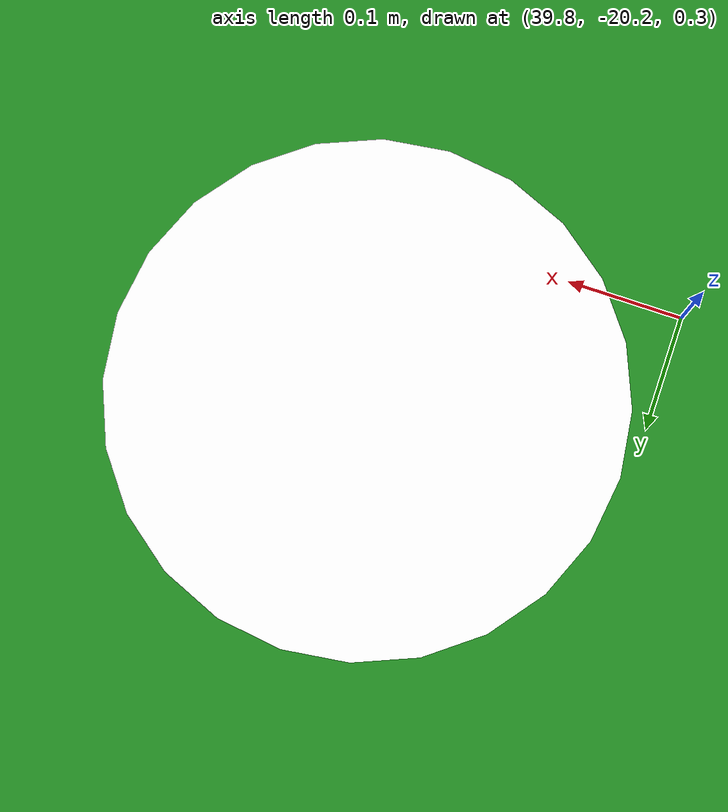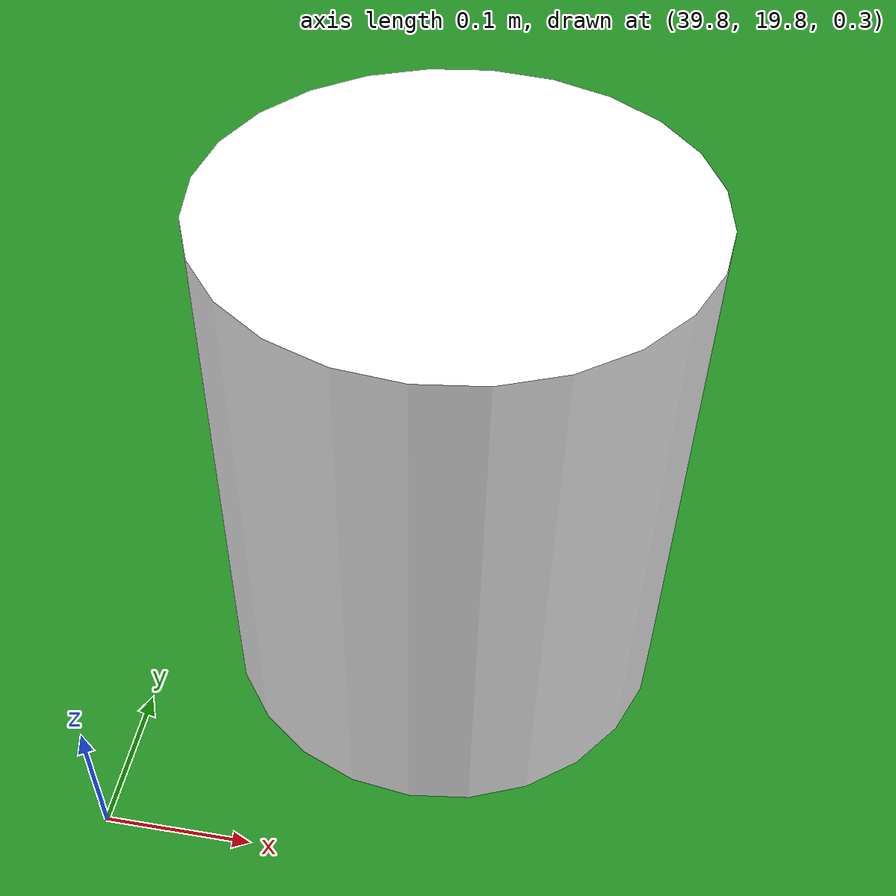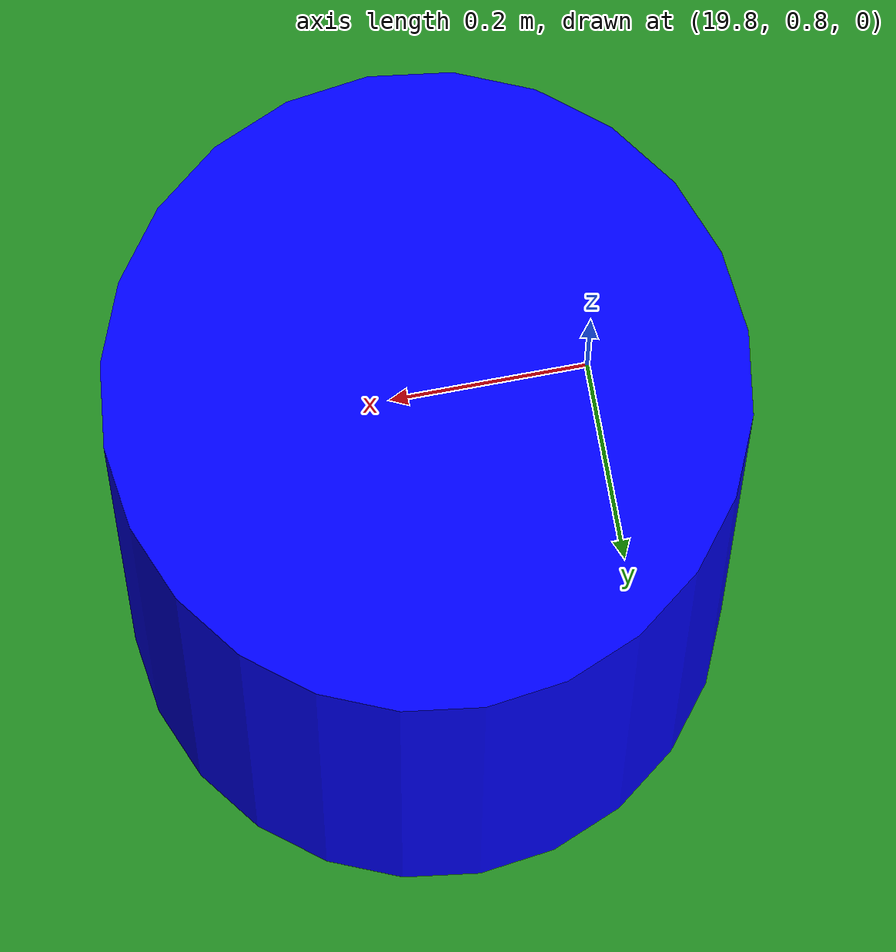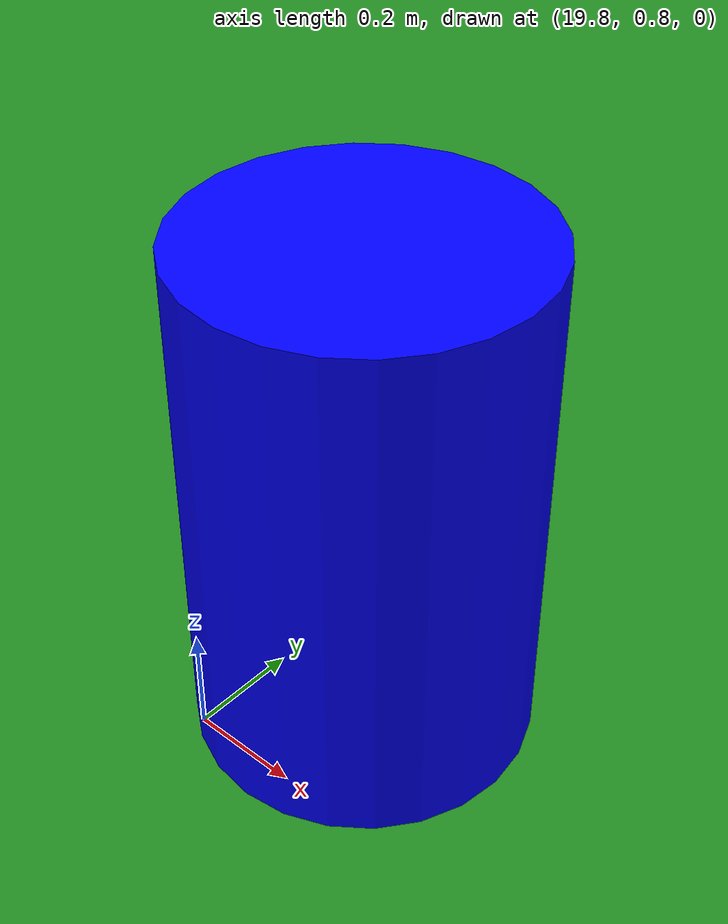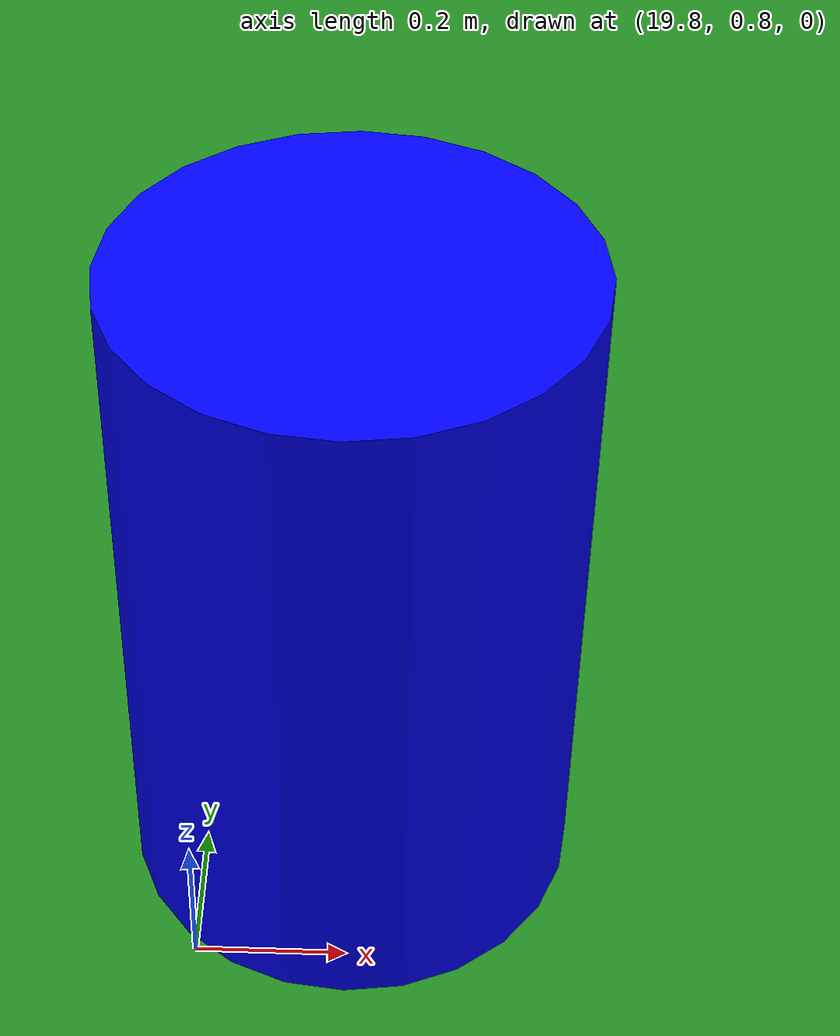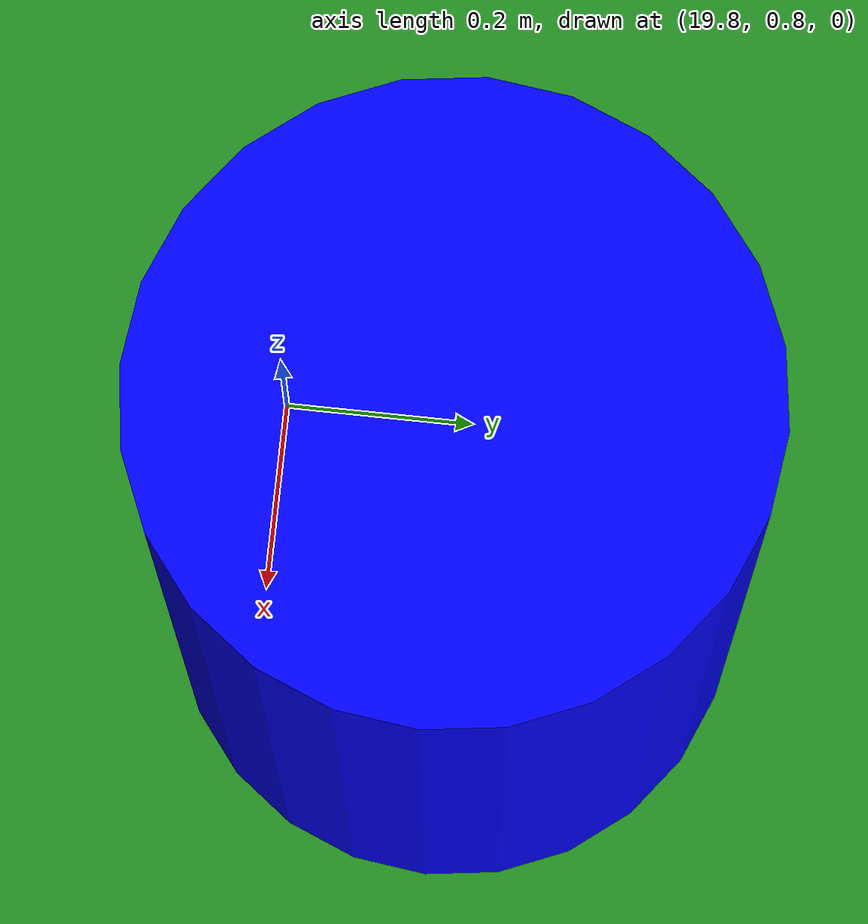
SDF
<?xml version="1.0" encoding="UTF-8"?>
<sdf version="1.9">
  <world name="Task2">
    <physics type="ode">
      <max_step_size>0.004</max_step_size>
      <real_time_factor>1.0</real_time_factor>
      <real_time_update_rate>250</real_time_update_rate>
    </physics>
    <plugin name="gz::sim::systems::Physics" filename="gz-sim-physics-system"/>
    <plugin name="gz::sim::systems::UserCommands" filename="gz-sim-user-commands-system"/>
    <plugin name="gz::sim::systems::SceneBroadcaster" filename="gz-sim-scene-broadcaster-system"/>
    <plugin name="gz::sim::systems::Contact" filename="gz-sim-contact-system"/>
    <plugin name="gz::sim::systems::Imu" filename="gz-sim-imu-system"/>
    <plugin name="gz::sim::systems::AirPressure" filename="gz-sim-air-pressure-system"/>
    <plugin name="gz::sim::systems::ApplyLinkWrench" filename="gz-sim-apply-link-wrench-system"/>
    <plugin name="gz::sim::systems::NavSat" filename="gz-sim-navsat-system"/>
    <plugin name="gz::sim::systems::Sensors" filename="gz-sim-sensors-system">
      <render_engine>ogre2</render_engine>
    </plugin>

    <gui fullscreen="false">
      <!-- 3D scene -->
      <plugin filename="MinimalScene" name="3D View">
        <gz-gui>
          <title>3D View</title>
          <property type="bool" key="showTitleBar">false</property>
          <property type="string" key="state">docked</property>
        </gz-gui>
        <engine>ogre2</engine>
        <scene>scene</scene>
        <ambient_light>0.4 0.4 0.4</ambient_light>
        <background_color>0.8 0.8 0.8</background_color>
        <camera_pose>-6 0 6 0 0.5 0</camera_pose>
        <camera_clip>
          <near>0.25</near>
          <far>25000</far>
        </camera_clip>
      </plugin>
      <!-- Plugins that add functionality to the scene -->
      <plugin filename="EntityContextMenuPlugin" name="Entity context menu">
        <gz-gui>
          <property key="state" type="string">floating</property>
          <property key="width" type="double">5</property>
          <property key="height" type="double">5</property>
          <property key="showTitleBar" type="bool">false</property>
        </gz-gui>
      </plugin>
      <plugin filename="GzSceneManager" name="Scene Manager">
        <gz-gui>
          <property key="resizable" type="bool">false</property>
          <property key="width" type="double">5</property>
          <property key="height" type="double">5</property>
          <property key="state" type="string">floating</property>
          <property key="showTitleBar" type="bool">false</property>
        </gz-gui>
      </plugin>
      <plugin filename="InteractiveViewControl" name="Interactive view control">
        <gz-gui>
          <property key="resizable" type="bool">false</property>
          <property key="width" type="double">5</property>
          <property key="height" type="double">5</property>
          <property key="state" type="string">floating</property>
          <property key="showTitleBar" type="bool">false</property>
        </gz-gui>
      </plugin>
      <plugin filename="CameraTracking" name="Camera Tracking">
        <gz-gui>
          <property key="resizable" type="bool">false</property>
          <property key="width" type="double">5</property>
          <property key="height" type="double">5</property>
          <property key="state" type="string">floating</property>
          <property key="showTitleBar" type="bool">false</property>
        </gz-gui>
      </plugin>
      <plugin filename="MarkerManager" name="Marker manager">
        <gz-gui>
          <property key="resizable" type="bool">false</property>
          <property key="width" type="double">5</property>
          <property key="height" type="double">5</property>
          <property key="state" type="string">floating</property>
          <property key="showTitleBar" type="bool">false</property>
        </gz-gui>
      </plugin>
      <plugin filename="SelectEntities" name="Select Entities">
        <gz-gui>
          <anchors target="Select entities">
            <line own="right" target="right"/>
            <line own="top" target="top"/>
          </anchors>
          <property key="resizable" type="bool">false</property>
          <property key="width" type="double">5</property>
          <property key="height" type="double">5</property>
          <property key="state" type="string">floating</property>
          <property key="showTitleBar" type="bool">false</property>
        </gz-gui>
      </plugin>
      <plugin filename="VisualizationCapabilities" name="Visualization Capabilities">
        <gz-gui>
          <property key="resizable" type="bool">false</property>
          <property key="width" type="double">5</property>
          <property key="height" type="double">5</property>
          <property key="state" type="string">floating</property>
          <property key="showTitleBar" type="bool">false</property>
        </gz-gui>
      </plugin>
      <plugin filename="Spawn" name="Spawn Entities">
        <gz-gui>
          <anchors target="Select entities">
            <line own="right" target="right"/>
            <line own="top" target="top"/>
          </anchors>
          <property key="resizable" type="bool">false</property>
          <property key="width" type="double">5</property>
          <property key="height" type="double">5</property>
          <property key="state" type="string">floating</property>
          <property key="showTitleBar" type="bool">false</property>
        </gz-gui>
      </plugin>
      <plugin name="World control" filename="WorldControl">
        <gz-gui>
          <title>World control</title>
          <property type="bool" key="showTitleBar">0</property>
          <property type="bool" key="resizable">0</property>
          <property type="double" key="height">72</property>
          <property type="double" key="width">121</property>
          <property type="double" key="z">1</property>
          <property type="string" key="state">floating</property>
          <anchors target="3D View">
            <line own="left" target="left"/>
            <line own="bottom" target="bottom"/>
          </anchors>
        </gz-gui>
        <play_pause>1</play_pause>
        <step>1</step>
        <start_paused>1</start_paused>
      </plugin>
      <plugin name="World stats" filename="WorldStats">
        <gz-gui>
          <title>World stats</title>
          <property type="bool" key="showTitleBar">0</property>
          <property type="bool" key="resizable">0</property>
          <property type="double" key="height">110</property>
          <property type="double" key="width">290</property>
          <property type="double" key="z">1</property>
          <property type="string" key="state">floating</property>
          <anchors target="3D View">
            <line own="right" target="right"/>
            <line own="bottom" target="bottom"/>
          </anchors>
        </gz-gui>
        <sim_time>1</sim_time>
        <real_time>1</real_time>
        <real_time_factor>1</real_time_factor>
        <iterations>1</iterations>
      </plugin>
      <plugin name="Entity tree" filename="EntityTree"/>
    </gui>

    <gravity>0 0 -9.8</gravity>

    <magnetic_field>6e-06 2.3e-05 -4.2e-05</magnetic_field>

    <atmosphere type="adiabatic"/>

    <scene>
      <grid>false</grid>
      <ambient>0.4 0.4 0.4 1</ambient>
      <background>0.7 0.7 0.7 1</background>
      <shadows>true</shadows>
    </scene>

    <!-- Models Begin Here -->
    <model name="ground_plane">
      <static>true</static>
      <link name="link">
        <inertial>
          <inertia>
            <ixx>0.16666</ixx>
            <ixy>0</ixy>
            <ixz>0</ixz>
            <iyy>0.16666</iyy>
            <iyz>0</iyz>
            <izz>0.16666</izz>
          </inertia>
          <mass>10</mass>
          <pose>0 0 0 0 0 0</pose>
        </inertial>
        <collision name="collision">
          <geometry>
            <plane>
              <normal>0 0 1</normal>
              <size>1 1</size>
            </plane>
          </geometry>
          <surface>
            <friction>
              <ode/>
            </friction>
            <bounce/>
            <contact/>
          </surface>
        </collision>
        <visual name="visual">
          <geometry>
            <plane>
              <normal>0 0 1</normal>
              <size>1000 2000</size>
            </plane>
          </geometry>
          <material>
            <ambient>0.13 0.55 0.13 1</ambient>  <!-- Green color -->
            <diffuse>0.13 0.55 0.13 1</diffuse>  <!-- Green color -->
            <specular>0.1 0.1 0.1 1</specular> <!-- Slight shine -->
          </material>
        </visual>
	      <thermal>
          <temperature>300</temperature>
        </thermal>
        <pose>0 0 0 0 -0 0</pose>
        <inertial>
          <pose>0 0 0 0 -0 0</pose>
          <mass>1</mass>
          <inertia>
            <ixx>1</ixx>
            <ixy>0</ixy>
            <ixz>0</ixz>
            <iyy>1</iyy>
            <iyz>0</iyz>
            <izz>1</izz>
          </inertia>
        </inertial>
        <enable_wind>false</enable_wind>
      </link>
      <pose>0 0 0 0 -0 0</pose>
      <self_collide>false</self_collide>
    </model>

    <!-- All tanks scaled to competition dimensions along with collision boundaries-->
    <!-- Task 2 Source water Tank -->
    <model name="source_tank">
      <pose>20 1 0.5 0 0 0</pose>
      <static>true</static>
      <link name="link">

        <collision name="collision">
          <geometry>
            <cylinder>
              <radius>0.292</radius>
              <length>0.914</length>
            </cylinder>
          </geometry>

          <surface>
            <contact>
              <ode/>
            </contact>
            <bounce/>
            <friction>
              <ode/>
            </friction>
          </surface>
        </collision>

        <visual name="visual">
          <geometry>
            <cylinder>
              <radius>0.292</radius>
              <length>0.914</length>
            </cylinder>
          </geometry>

          <material>
            <ambient>0 0 1 1</ambient>
            <diffuse>0 0 1 1</diffuse>
            <specular>0 0 1 1</specular>
          </material>
        </visual>
        <inertial>
          <mass>1.0</mass>
          <inertia>
            <ixx>0.01</ixx>
            <ixy>0.0</ixy>
            <ixz>0.0</ixz>
            <iyy>0.01</iyy>
            <iyz>0.0</iyz>
            <izz>0.01</izz>
          </inertia>
        </inertial>
      </link>
    </model>

    <!-- Task 2 Target water Tank 1-->
    <model name="target_tank_1">
      <pose>40 20 0.5 0 0 0</pose>
      <static>true</static>
      <link name="link">

        <collision name="collision">
          <geometry>
            <cylinder>
              <radius>0.155</radius>
              <length>0.37</length>
            </cylinder>
          </geometry>
        </collision>

        <visual name="visual">
          <geometry>
            <cylinder>
              <radius>0.155</radius>
              <length>0.37</length>
            </cylinder>
          </geometry>

          <material>
            <ambient>1.0 1.0 1.0 1.0</ambient>
            <diffuse>1.0 1.0 1.0 1.0</diffuse>
            <specular>0.0 0.0 0.0 1.0</specular>
          </material>
        </visual>
      </link>
    </model>

    <!-- Task 2 Target water Tank 2-->
    <model name="target_tank_2">
      <pose>40 -20 0.5 0 0 0</pose>
      <static>true</static>
      <link name="link">
        <collision name="collision">
          <geometry>
            <cylinder>
              <radius>0.155</radius>
              <length>0.37</length>
            </cylinder>
          </geometry>
        </collision>

        <visual name="visual">
          <geometry>
            <cylinder>
              <radius>0.155</radius>
              <length>0.37</length>
            </cylinder>
          </geometry>

          <material>
            <ambient>1 1 1 1</ambient>
            <diffuse>1 1 1 1</diffuse>
            <specular>0 0 0 1</specular>
          </material>
        </visual>
      </link>
    </model>

    <light name="sunUTC" type="directional">
      <pose>0 0 500 0 -0 0</pose>
      <cast_shadows>true</cast_shadows>
      <intensity>1</intensity>
      <direction>0.001 0.625 -0.78</direction>
      <diffuse>0.904 0.904 0.904 1</diffuse>
      <specular>0.271 0.271 0.271 1</specular>
      <attenuation>
        <range>2000</range>
        <linear>0</linear>
        <constant>1</constant>
        <quadratic>0</quadratic>
      </attenuation>
      <spot>
        <inner_angle>0</inner_angle>
        <outer_angle>0</outer_angle>
        <falloff>0</falloff>
      </spot>
    </light>

    <spherical_coordinates>
      <surface_model>EARTH_WGS84</surface_model>
      <world_frame_orientation>ENU</world_frame_orientation>
      <!-- Actual Competition Starting Coordinates-->
      <latitude_deg>50.097342</latitude_deg>
      <longitude_deg>-110.735221</longitude_deg>
      <elevation>0</elevation>
    </spherical_coordinates>
  </world>
</sdf>
